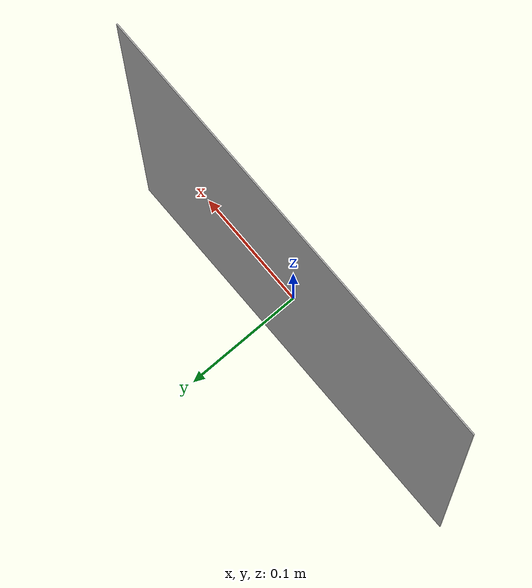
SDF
<?xml version="1.0" ?>
<sdf version="1.6">
  <model name="Tag4">
    <static>true</static>
    <link name="link">
      <pose>0 0 0 0 0 0</pose>
      <collision name="collision">
        <geometry>
          <box>
            <size>0.3777 0.001 0.545985</size>
          </box>
        </geometry>
      </collision>
      <visual name="visual">
        <cast_shadows>false</cast_shadows>
        <geometry>
          <box>
            <size>0.3777 0.001 0.545985</size>
          </box>
        </geometry>
        <material>
          <script>
            <uri>model://Tag4/materials/scripts</uri>
	    <uri>model://Tag4/materials/textures</uri>
	    <name>vrc/Tag4</name>
          </script>
        </material>
      </visual>
    </link>
  </model>
</sdf>
